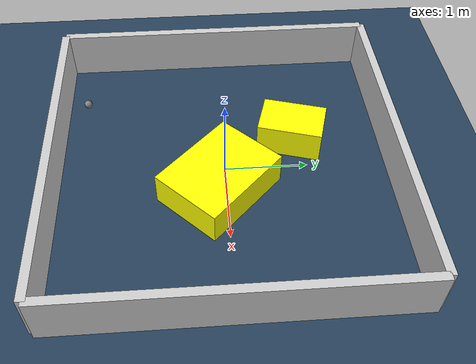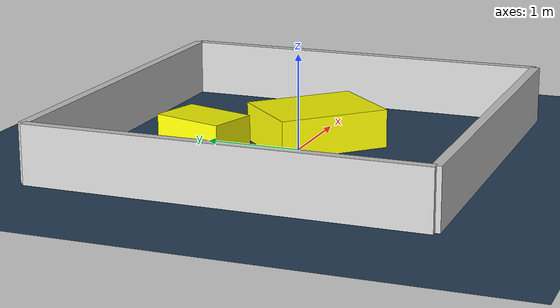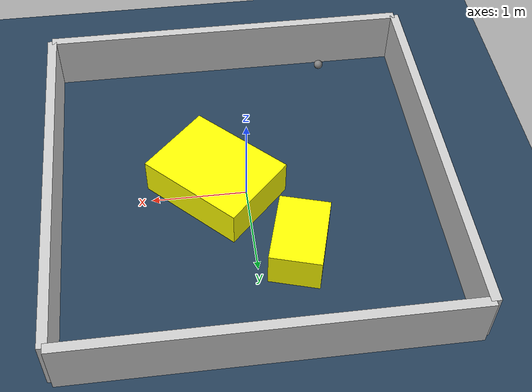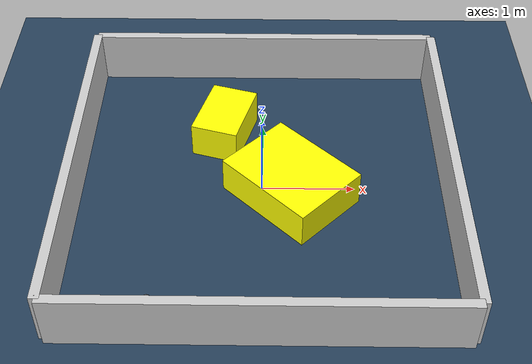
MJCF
<?xml version="1.0" ?>
<mujoco model="generated_environment">
  <option timestep="0.01" integrator="RK4" cone="elliptic"/>
  <default>
    <geom density="1"/>
  </default>
  <asset>
    <texture builtin="gradient" height="3072" rgb1="0.3 0.5 0.7" rgb2="0 0 0" type="skybox" width="512"/>
    <texture builtin="checker" height="300" mark="edge" markrgb="0.8 0.8 0.8" name="groundplane" rgb1="0.2 0.3 0.4" rgb2="0.1 0.2 0.3" type="2d" width="300"/>
    <material name="groundplane" reflectance="0.2" texrepeat="5 5" texture="groundplane" texuniform="true"/>
    <material name="robot" rgba="0.0 1.0 0.0 1"/>
  </asset>
  <worldbody>
    <light dir="0 0 -1" directional="true" pos="0 0 1.5"/>
    <geom condim="4" friction="1.0 0.005 0.001" material="groundplane" name="floor" size="0 0 0.05" type="plane"/>
    <body name="walls">
      <geom name="wall_1" condim="4" pos="-2.0 0.0 0.3" rgba="0.800000011920929 0.800000011920929 0.800000011920929 1.0" size="0.05 2.0 0.3" type="box"/>
      <geom name="wall_2" condim="4" pos="2.0 0.0 0.3" rgba="0.800000011920929 0.800000011920929 0.800000011920929 1.0" size="0.05 2.0 0.3" type="box"/>
      <geom name="wall_3" condim="4" pos="0.0 -2.0 0.3" rgba="0.800000011920929 0.800000011920929 0.800000011920929 1.0" size="2.0 0.05 0.3" type="box"/>
      <geom name="wall_4" condim="4" pos="0.0 2.0 0.3" rgba="0.800000011920929 0.800000011920929 0.800000011920929 1.0" size="2.0 0.05 0.3" type="box"/>
    </body>
    <body name="robot">
      <joint name="joint_x" type="slide" pos="0 0 0" axis="1 0 0"/>
      <joint name="joint_y" type="slide" pos="0 0 0" axis="0 1 0"/>
      <geom name="robot" type="sphere" pos="-1.0652075270470114 -1.6877691309664353 0.2" size="0.05" mass="5." friction="1.0 0.005 0.0001" condim="4"/>
      <site name="sensor_ball"/>
    </body>
    <body name="obstacle_1_movable">
      <geom name="obstacle_1_movable" condim="4" pos="-0.4307660840915841 0.8574802458626671 0.2" euler="0 0 73.55030346902946" friction="1.0 0.005 0.001" rgba="1 1 0 1" size="0.38671855122746146 0.2613865635415304 0.2" type="box" mass="0.1"/>
      <joint type="free"/>
    </body>
    <body name="obstacle_2_movable">
      <geom name="obstacle_2_movable" condim="4" pos="0.30980248721370307 -0.0838958533943035 0.2" euler="0 0 225.46348447502135" friction="1.0 0.005 0.001" rgba="1 1 0 1" size="0.4440784881991944 0.5871136451046276 0.2" type="box" mass="0.1"/>
      <joint type="free"/>
    </body>
  </worldbody>
  <actuator>
    <motor name="actuator_x" joint="joint_x" gear="1" ctrlrange="-1 1"/>
    <motor name="actuator_y" joint="joint_y" gear="1" ctrlrange="-1 1"/>
  </actuator>
</mujoco>
